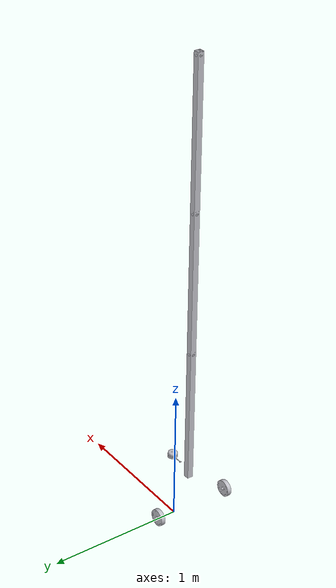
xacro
<?xml version="1.0" ?>
<robot name="amr" xmlns:xacro="http://www.ros.org/wiki/xacro">

<xacro:include filename="$(find amr_description)/urdf/materials.xacro" />
<xacro:include filename="$(find amr_description)/urdf/amr.trans" />
<xacro:include filename="$(find amr_description)/urdf/amr.gazebo" />
<link name="base_link">
  <inertial>
    <origin xyz="0.0 0.0 0.0" rpy="0 0 0"/>
    <mass value="0.0"/>
    <inertia ixx="0.0" iyy="0.0" izz="0.0" ixy="0.0" iyz="0.0" ixz="0.0"/>
  </inertial>
  <visual>
    <origin xyz="0 0 0" rpy="0 0 0"/>
    <geometry>
      <mesh filename="file://$(find amr_description)/meshes/base_link.stl" scale="0.001 0.001 0.001"/>
    </geometry>
    <material name="silver"/>
  </visual>
  <collision>
    <origin xyz="0 0 0" rpy="0 0 0"/>
    <geometry>
      <mesh filename="file://$(find amr_description)/meshes/base_link.stl" scale="0.001 0.001 0.001"/>
    </geometry>
  </collision>
</link>

<link name="L_wheel_1">
  <inertial>
    <origin xyz="-4.863095991319843e-07 -1.357890951347862e-07 2.1207981681925503e-07" rpy="0 0 0"/>
    <mass value="0.5"/>
    <inertia ixx="0.000573" iyy="0.001077" izz="0.000573" ixy="-0.0" iyz="0.0" ixz="0.0"/>
  </inertial>
  <visual>
    <origin xyz="0.054114 -0.17519 -0.067088" rpy="0 0 0"/>
    <geometry>
      <mesh filename="file://$(find amr_description)/meshes/L_wheel_1.stl" scale="0.001 0.001 0.001"/>
    </geometry>
    <material name="silver"/>
  </visual>
  <collision>
    <origin xyz="0.054114 -0.17519 -0.067088" rpy="0 0 0"/>
    <geometry>
      <mesh filename="file://$(find amr_description)/meshes/L_wheel_1.stl" scale="0.001 0.001 0.001"/>
    </geometry>
  </collision>
</link>

<link name="R_wheel_1">
  <inertial>
    <origin xyz="-4.863095917836957e-07 -1.357890967446096e-07 2.1207981767967787e-07" rpy="0 0 0"/>
    <mass value="0.5"/>
    <inertia ixx="0.000573" iyy="0.001077" izz="0.000573" ixy="-0.0" iyz="-0.0" ixz="-0.0"/>
  </inertial>
  <visual>
    <origin xyz="0.054114 0.41981 -0.067088" rpy="0 0 0"/>
    <geometry>
      <mesh filename="file://$(find amr_description)/meshes/R_wheel_1.stl" scale="0.001 0.001 0.001"/>
    </geometry>
    <material name="silver"/>
  </visual>
  <collision>
    <origin xyz="0.054114 0.41981 -0.067088" rpy="0 0 0"/>
    <geometry>
      <mesh filename="file://$(find amr_description)/meshes/R_wheel_1.stl" scale="0.001 0.001 0.001"/>
    </geometry>
  </collision>
</link>

<link name="mr_robot/base_link/gpu_lidar">
  <inertial>
    <origin xyz="0.21693818631555356 -0.2885381579659291 0.025435818960008738" rpy="0 0 0"/>
    <mass value="0.0000000000000000000000000000000000000000000000000000000000000000000000000000000000000000000000000000000000001"/>
    <inertia ixx="0.000187" iyy="0.000238" izz="0.000313" ixy="-3e-06" iyz="-4e-06" ixz="-2.1e-05"/>
  </inertial>
  <visual>
    <origin xyz="0.021443 -0.164774 -0.326707" rpy="0 0 0"/>
    <geometry>
      <mesh filename="file://$(find amr_description)/meshes/rplidar-a2m4-r1_v1_1.stl" scale="0.001 0.001 0.001"/>
    </geometry>
    <material name="silver"/>
  </visual>
  <collision>
    <origin xyz="0.021443 -0.164774 -0.326707" rpy="0 0 0"/>
    <geometry>
      <mesh filename="file://$(find amr_description)/meshes/rplidar-a2m4-r1_v1_1.stl" scale="0.001 0.001 0.001"/>
    </geometry>
  </collision>
</link>

<link name="sensor_rod_1">
  <inertial>
    <origin xyz="-4.863096013663082e-07 0.021999864240703368 2.279670597200245" rpy="0 0 0"/>
    <mass value="0.0"/>
    <inertia ixx="20.793443" iyy="20.793445" izz="0.007056" ixy="0.0" iyz="0.0" ixz="0.0"/>
  </inertial>
  <visual>
    <origin xyz="0.033114 0.12231 -0.435588" rpy="0 0 0"/>
    <geometry>
      <mesh filename="file://$(find amr_description)/meshes/sensor_rod_1.stl" scale="0.001 0.001 0.0007"/>
    </geometry>
    <material name="silver"/>
  </visual>
  <collision>
    <origin xyz="0.033114 0.12231 -0.435588" rpy="0 0 0"/>
    <geometry>
      <mesh filename="file://$(find amr_description)/meshes/sensor_rod_1.stl" scale="0.001 0.001 0.0007"/>
    </geometry>
  </collision>
</link>

<joint name="L_wheel_joint" type="continuous">
  <origin xyz="-0.054114 0.17519 0.067088" rpy="0 0 0"/>
  <parent link="base_link"/>
  <child link="L_wheel_1"/>
  <axis xyz="0.0 1.0 0.0"/>
</joint>

<joint name="R_wheel_joint" type="continuous">
  <origin xyz="-0.054114 -0.41981 0.067088" rpy="0 0 0"/>
  <parent link="base_link"/>
  <child link="R_wheel_1"/>
  <axis xyz="0.0 1.0 0.0"/>
</joint>

<joint name="Rigid 12" type="fixed">
  <origin xyz="-0.021443 0.164774 0.326707" rpy="0 0 0"/>
  <parent link="base_link"/>
  <child link="mr_robot/base_link/gpu_lidar"/>
</joint>

<joint name="Rigid 15" type="fixed">
  <origin xyz="-0.033114 -0.12231 0.435588" rpy="0 0 0"/>
  <parent link="base_link"/>
  <child link="sensor_rod_1"/>
</joint>

</robot>

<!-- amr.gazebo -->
<robot name="amr" xmlns:xacro="http://www.ros.org/wiki/xacro" >

<xacro:property name="body_color" value="Gazebo/Silver" />

<gazebo>
		<plugin filename="gz-sim-diff-drive-system"
			name="gz::sim::systems::DiffDrive">
			<left_joint>L_wheel_joint</left_joint>
    		<right_joint>R_wheel_joint</right_joint>
    		<wheel_separation>0.5</wheel_separation>
    		<wheel_radius>0.06</wheel_radius>
			<topic>cmd_vel</topic>
    	</plugin>
      <plugin filename="libgz-sim-joint-state-publisher-system.so"
    name="gz::sim::systems::JointStatePublisher">
    <topic>/joint_states</topic>
    </plugin>
	</gazebo>
<gazebo>
      <plugin
        filename="gz-sim-odometry-publisher-system"
        name="gz::sim::systems::OdometryPublisher">
        <odom_frame>odom</odom_frame>
        <robot_base_frame>base_link</robot_base_frame>
        <odom_topic>/odom</odom_topic>
        <tf_topic>/tf</tf_topic>

      </plugin>
    </gazebo>

<gazebo reference="mr_robot/base_link/gpu_lidar">
  <sensor name='gpu_lidar' type='gpu_lidar'>
    <pose relative_to='mr_robot/base_link/gpu_lidar'>0 0 0 0 0 0</pose>
    <topic>/laser/scan</topic>
    <update_rate>30</update_rate>
    <ray>
        <scan>
            <horizontal>
                <samples>600</samples>
                <resolution>1</resolution>
                <min_angle>-3.14</min_angle>
                <max_angle>3.14</max_angle>
            </horizontal>
            <vertical>
                <samples>1</samples>
                <resolution>0.01</resolution>
                <min_angle>0</min_angle>
                <max_angle>0</max_angle>
            </vertical>
        </scan>
        <range>
            <min>1.2</min>
            <max>8.0</max>
            <resolution>0.01</resolution>
        </range>
    </ray>
    <always_on>1</always_on>
    <visualize>true</visualize>
</sensor>
</gazebo>
<gazebo reference="base_link">
  <material>${body_color}</material>
  <mu1>0.2</mu1>
  <mu2>0.2</mu2>
  <selfCollide>false</selfCollide>
  <gravity>false</gravity>
</gazebo>

<gazebo reference="L_wheel_1">
  <material>${body_color}</material>
  <mu1>0.2</mu1>
  <mu2>0.2</mu2>
  <selfCollide>true</selfCollide>
</gazebo>

<gazebo reference="L_wheel__1__1">
  <material>${body_color}</material>
  <mu1>0.2</mu1>
  <mu2>0.2</mu2>
  <selfCollide>true</selfCollide>
</gazebo>

<gazebo reference="rplidar-a2m4-r1_v1_1">
  <material>${body_color}</material>
  <mu1>0.2</mu1>
  <mu2>0.2</mu2>
  <selfCollide>true</selfCollide>
</gazebo>

<gazebo reference="sensor_Rod_1">
  <material>${body_color}</material>
  <mu1>0.2</mu1>
  <mu2>0.2</mu2>
  <selfCollide>true</selfCollide>
</gazebo>

</robot>
